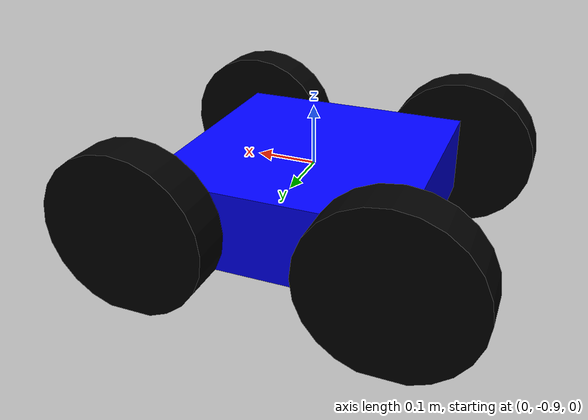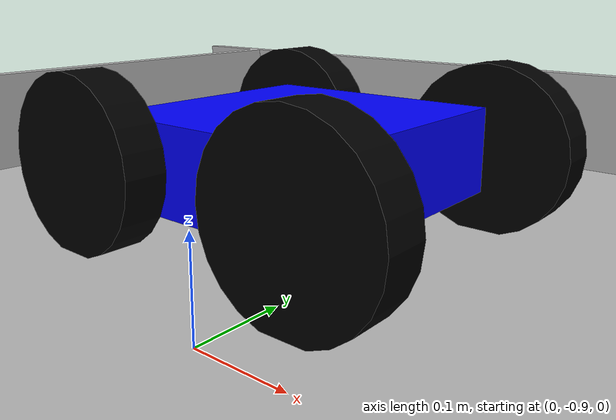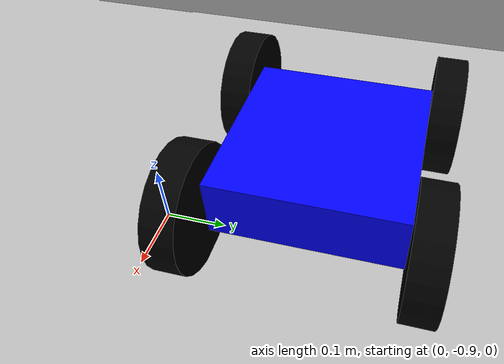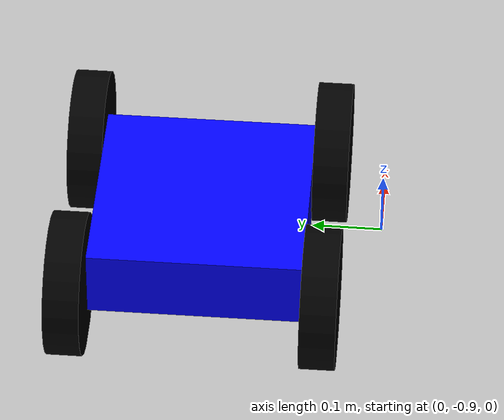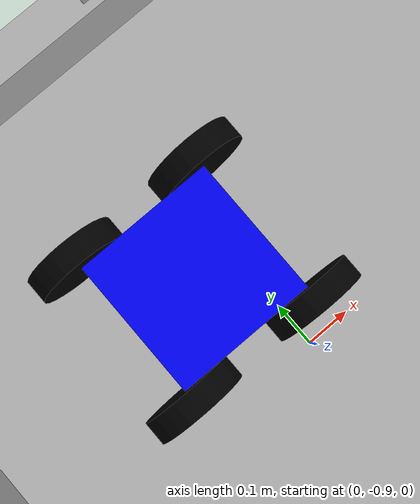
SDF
<?xml version="1.0" ?>
<sdf version="1.8">
  <world name="simple_world">
    <physics name="1ms" type="ignored">
      <max_step_size>0.001</max_step_size>
      <real_time_factor>1.0</real_time_factor>
    </physics>

    <plugin filename="gz-sim-physics-system" name="gz::sim::systems::Physics"/>
    <plugin filename="gz-sim-scene-broadcaster-system" name="gz::sim::systems::SceneBroadcaster"/>
    <plugin filename="gz-sim-user-commands-system" name="gz::sim::systems::UserCommands"/>
    <plugin filename="gz-sim-sensors-system" name="gz::sim::systems::Sensors"/>
    <plugin filename="gz-sim-imu-system" name="gz::sim::systems::Imu" />

    <light type="directional" name="sun">
      <cast_shadows>true</cast_shadows>
      <pose>0 0 10 0 0 0</pose>
      <diffuse>0.8 0.8 0.8 1</diffuse>
      <specular>0.2 0.2 0.2 1</specular>
      <attenuation>
        <range>1000</range>
        <constant>0.9</constant>
        <linear>0.01</linear>
        <quadratic>0.001</quadratic>
      </attenuation>
      <direction>-0.5 0.1 -0.9</direction>
    </light>

    <model name="ground_plane">
      <static>true</static>
      <link name="link">
        <collision name="collision">
          <pose>10 0 0 1.57 0 3.14</pose>
          <geometry>
            <mesh>
              <uri>field2025.obj</uri>
              <scale>1 1 1</scale>
            </mesh>
          </geometry>
          <surface>
            <friction>
              <ode>
                <mu>1.0</mu>       <!-- 摩擦係数（静止） -->
                <mu2>1.0</mu2>     <!-- 摩擦係数（動摩擦） -->
              </ode>
            </friction>
            <contact>
              <ode>
                <kp>100</kp>       <!-- バネ定数：硬さ -->
                <kd>1.0</kd>       <!-- ダンパー：跳ね返り抑える -->
              </ode>
            </contact>
          </surface>
        </collision>
        <visual name="visual">
          <pose>10 0 0 1.57 0 3.14</pose>
          <geometry>
            <mesh>
              <uri>field2025.obj</uri>
              <scale>1 1 1</scale>
            </mesh>
          </geometry>
        </visual>
      </link>
    </model>

    <model name="Robot">
      <static>false</static>
      <pose>-0.1 -0.65 0.1 0 0 0</pose>

      <link name="base_link">
        <inertial>
          <mass>1.0</mass>
          <inertia>
              <ixx>0.0835</ixx>
              <ixy>0</ixy>
              <ixz>0</ixz>
              <iyy>0.1209</iyy>
              <iyz>0</iyz>
              <izz>0.1209</izz>
          </inertia>
      </inertial>
        <visual name="visual">
          <geometry><box><size>0.3 0.3 0.1</size></box></geometry>
          <material><ambient>0 0 1 1</ambient><diffuse>0 0 1 1</diffuse></material>
        </visual>
        <collision name="collision">
          <geometry><box><size>0.5 0.3 0.1</size></box></geometry>
        </collision>

        <sensor name="lidar" type="gpu_lidar">
          <pose>0.4 0 0.0 0 0 0</pose>
          <topic>lidar</topic>
          <update_rate>10</update_rate>
          <lidar>
              <scan>
                  <horizontal>
                      <samples>360</samples>
                      <resolution>1</resolution>
                      <min_angle>-3.14</min_angle>
                      <max_angle>3.14</max_angle>
                  </horizontal>
              </scan>
              <range>
                  <min>0.02</min>
                  <max>12.0</max>
                  <resolution>0.01</resolution>
              </range>
              <noise>
                  <type>gaussian</type>
                  <mean>0.0</mean>
                  <stddev>0.01</stddev>
              </noise>
          </lidar>
          <visualize>true</visualize>
          <always_on>1</always_on>
        </sensor>

        <sensor name="imu_sensor" type="imu">
          <always_on>1</always_on>
          <update_rate>500</update_rate>
          <visualize>true</visualize>
          <topic>/imu</topic>
        </sensor>
      </link>

      <link name="left_wheel">
        <pose relative_to="base_link">0.15 0.175 0 -1.5708 0 0</pose>    <!-- 左車輪の位置 -->
        <inertial>
            <mass>0.5</mass>    <!-- 車輪の質量 -->
            <inertia>
                <ixx>0.00125</ixx>
                <ixy>0</ixy>
                <ixz>0</ixz>
                <iyy>0.00125</iyy>
                <iyz>0</iyz>
                <izz>0.002</izz>
            </inertia>
        </inertial>
        <visual name="visual">
            <geometry>
                <cylinder>
                    <radius>0.1</radius>    <!-- 車輪の半径 -->
                    <length>0.05</length>    <!-- 車輪の幅 -->
                </cylinder>
            </geometry>
            <material>
                <ambient>0 0 0 1</ambient>    <!-- 黒色 -->
                <diffuse>0 0 0 1</diffuse>
                <specular>0 0 0 1</specular>
            </material>
        </visual>
        <collision name="collision">
            <geometry>
                <cylinder>
                    <radius>0.1</radius>
                    <length>0.05</length>
                </cylinder>
            </geometry>
        </collision>
      </link>

      <link name="right_wheel">
        <pose relative_to="base_link">0.15 -0.175 0 -1.5708 0 0</pose>    <!-- 右車輪の位置 -->
        <inertial>
            <mass>0.5</mass>
            <inertia>
                <ixx>0.00125</ixx>
                <ixy>0</ixy>
                <ixz>0</ixz>
                <iyy>0.00125</iyy>
                <iyz>0</iyz>
                <izz>0.002</izz>
            </inertia>
        </inertial>
        <visual name="visual">
            <geometry>
                <cylinder>
                    <radius>0.1</radius>
                    <length>0.05</length>
                </cylinder>
            </geometry>
            <material>
                <ambient>0 0 0 1</ambient>
                <diffuse>0 0 0 1</diffuse>
                <specular>0 0 0 1</specular>
            </material>
        </visual>
        <collision name="collision">
            <geometry>
                <cylinder>
                    <radius>0.1</radius>
                    <length>0.05</length>
                </cylinder>
            </geometry>
        </collision>
      </link>

      <link name="left_wheel_b">
        <pose relative_to="base_link">-0.15 0.175 0 -1.5708 0 0</pose>    <!-- 左車輪の位置 -->
        <inertial>
            <mass>0.5</mass>    <!-- 車輪の質量 -->
            <inertia>
                <ixx>0.00125</ixx>
                <ixy>0</ixy>
                <ixz>0</ixz>
                <iyy>0.00125</iyy>
                <iyz>0</iyz>
                <izz>0.002</izz>
            </inertia>
        </inertial>
        <visual name="visual">
            <geometry>
                <cylinder>
                    <radius>0.1</radius>    <!-- 車輪の半径 -->
                    <length>0.05</length>    <!-- 車輪の幅 -->
                </cylinder>
            </geometry>
            <material>
                <ambient>0 0 0 1</ambient>    <!-- 黒色 -->
                <diffuse>0 0 0 1</diffuse>
                <specular>0 0 0 1</specular>
            </material>
        </visual>
        <collision name="collision">
            <geometry>
                <cylinder>
                    <radius>0.1</radius>
                    <length>0.05</length>
                </cylinder>
            </geometry>
        </collision>
      </link>

      <link name="right_wheel_b">
        <pose relative_to="base_link">-0.15 -0.175 0 -1.5708 0 0</pose>    <!-- 右車輪の位置 -->
        <inertial>
            <mass>0.5</mass>
            <inertia>
                <ixx>0.00125</ixx>
                <ixy>0</ixy>
                <ixz>0</ixz>
                <iyy>0.00125</iyy>
                <iyz>0</iyz>
                <izz>0.002</izz>
            </inertia>
        </inertial>
        <visual name="visual">
            <geometry>
                <cylinder>
                    <radius>0.1</radius>
                    <length>0.05</length>
                </cylinder>
            </geometry>
            <material>
                <ambient>0 0 0 1</ambient>
                <diffuse>0 0 0 1</diffuse>
                <specular>0 0 0 1</specular>
            </material>
        </visual>
        <collision name="collision">
            <geometry>
                <cylinder>
                    <radius>0.1</radius>
                    <length>0.05</length>
                </cylinder>
            </geometry>
        </collision>
      </link>

      <joint name="left_wheel_joint" type="revolute">
        <parent>base_link</parent>
        <child>left_wheel</child>
        <axis>
            <xyz>0 0 1</xyz>    <!-- 回転軸 -->
            <limit>
                <lower>-1.79769e+308</lower>    <!-- 回転制限なし -->
                <upper>1.79769e+308</upper>
            </limit>
        </axis>
      </joint>

      <!-- 右車輪のジョイント -->
      <joint name="right_wheel_joint" type="revolute">
          <parent>base_link</parent>
          <child>right_wheel</child>
          <axis>
              <xyz>0 0 1</xyz>
              <limit>
                  <lower>-1.79769e+308</lower>
                  <upper>1.79769e+308</upper>
              </limit>
          </axis>
      </joint>

      <joint name="left_wheel_joint_b" type="revolute">
        <parent>base_link</parent>
        <child>left_wheel_b</child>
        <axis>
            <xyz>0 0 1</xyz>    <!-- 回転軸 -->
            <limit>
                <lower>-1.79769e+308</lower>    <!-- 回転制限なし -->
                <upper>1.79769e+308</upper>
            </limit>
        </axis>
      </joint>

      <!-- 右車輪のジョイント -->
      <joint name="right_wheel_joint_b" type="revolute">
          <parent>base_link</parent>
          <child>right_wheel_b</child>
          <axis>
              <xyz>0 0 1</xyz>
              <limit>
                  <lower>-1.79769e+308</lower>
                  <upper>1.79769e+308</upper>
              </limit>
          </axis>
      </joint>

      <plugin filename="gz-sim-diff-drive-system" name="gz::sim::systems::DiffDrive">
        <topic>cmd_vel</topic>
        <left_joint>left_wheel_joint</left_joint>
        <right_joint>right_wheel_joint</right_joint>
        <wheel_separation>0.35</wheel_separation>
        <wheel_radius>0.1</wheel_radius>
      </plugin>

      <plugin filename="gz-sim-diff-drive-system" name="gz::sim::systems::DiffDrive">
        <topic>cmd_vel</topic>
        <left_joint>left_wheel_joint_b</left_joint>
        <right_joint>right_wheel_joint_b</right_joint>
        <wheel_separation>0.35</wheel_separation>
        <wheel_radius>0.1</wheel_radius>
      </plugin>
    </model>
  </world>
</sdf>
